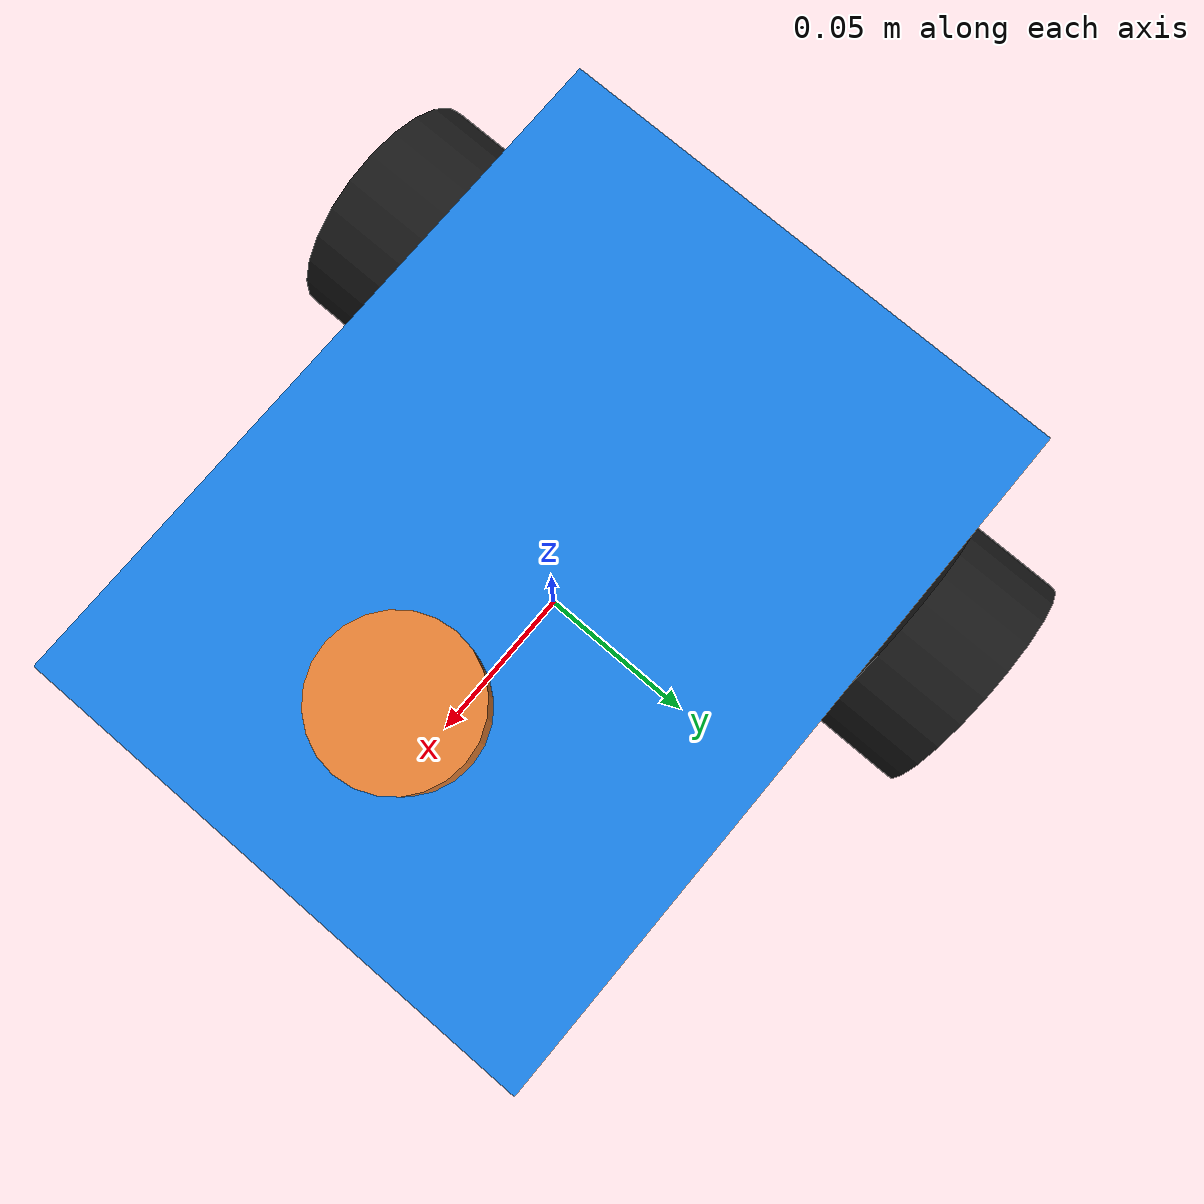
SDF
<?xml version="1.0"?>
<sdf version="1.9">
  <model name="floorscan_bot">
    <pose>0 0 0.05 0 0 0</pose>
    <self_collide>false</self_collide>

    <!-- ===================== CHASSIS ===================== -->
    <link name="chassis">
      <pose>0 0 0 0 0 0</pose>
      <inertial>
        <mass>1.2</mass>
        <inertia>
          <ixx>0.0060</ixx><iyy>0.0090</iyy><izz>0.0130</izz>
          <ixy>0</ixy><ixz>0</ixz><iyz>0</iyz>
        </inertia>
      </inertial>
      <collision name="chassis_collision">
        <geometry><box><size>0.20 0.15 0.08</size></box></geometry>
      </collision>
      <visual name="chassis_visual">
        <geometry><box><size>0.20 0.15 0.08</size></box></geometry>
        <material>
          <ambient>0.1 0.5 0.9 1</ambient>
          <diffuse>0.1 0.5 0.9 1</diffuse>
        </material>
      </visual>
    </link>

    <!-- ===================== CASTER ===================== -->
    <link name="caster">
      <pose>0.08 0 -0.03 0 0 0</pose>
      <inertial>
        <mass>0.05</mass>
        <inertia><ixx>0.00001</ixx><iyy>0.00001</iyy><izz>0.00001</izz>
          <ixy>0</ixy><ixz>0</ixz><iyz>0</iyz></inertia>
      </inertial>
      <collision name="caster_collision">
        <geometry><sphere><radius>0.015</radius></sphere></geometry>
        <surface><friction><ode><mu>0.01</mu><mu2>0.01</mu2></ode></friction></surface>
      </collision>
      <visual name="caster_visual">
        <geometry><sphere><radius>0.015</radius></sphere></geometry>
        <material><ambient>0.2 0.2 0.2 1</ambient></material>
      </visual>
    </link>
    <joint name="caster_joint" type="fixed">
      <parent>chassis</parent>
      <child>caster</child>
    </joint>

    <!-- ===================== LEFT WHEEL ===================== -->
    <link name="left_wheel">
      <pose>-0.05 0.09 0 -1.5708 0 0</pose>
      <inertial>
        <mass>0.05</mass>
        <inertia><ixx>0.00002</ixx><iyy>0.00002</iyy><izz>0.00003</izz>
          <ixy>0</ixy><ixz>0</ixz><iyz>0</iyz></inertia>
      </inertial>
      <collision name="left_wheel_collision">
        <geometry><cylinder><radius>0.033</radius><length>0.026</length></cylinder></geometry>
        <surface><friction><ode><mu>1.0</mu><mu2>1.0</mu2></ode></friction></surface>
      </collision>
      <visual name="left_wheel_visual">
        <geometry><cylinder><radius>0.033</radius><length>0.026</length></cylinder></geometry>
        <material><ambient>0.1 0.1 0.1 1</ambient></material>
      </visual>
    </link>
    <joint name="left_wheel_joint" type="revolute">
      <parent>chassis</parent>
      <child>left_wheel</child>
      <axis><xyz>0 0 1</xyz><limit><lower>-1e16</lower><upper>1e16</upper></limit></axis>
    </joint>

    <!-- ===================== RIGHT WHEEL ===================== -->
    <link name="right_wheel">
      <pose>-0.05 -0.09 0 -1.5708 0 0</pose>
      <inertial>
        <mass>0.05</mass>
        <inertia><ixx>0.00002</ixx><iyy>0.00002</iyy><izz>0.00003</izz>
          <ixy>0</ixy><ixz>0</ixz><iyz>0</iyz></inertia>
      </inertial>
      <collision name="right_wheel_collision">
        <geometry><cylinder><radius>0.033</radius><length>0.026</length></cylinder></geometry>
        <surface><friction><ode><mu>1.0</mu><mu2>1.0</mu2></ode></friction></surface>
      </collision>
      <visual name="right_wheel_visual">
        <geometry><cylinder><radius>0.033</radius><length>0.026</length></cylinder></geometry>
        <material><ambient>0.1 0.1 0.1 1</ambient></material>
      </visual>
    </link>
    <joint name="right_wheel_joint" type="revolute">
      <parent>chassis</parent>
      <child>right_wheel</child>
      <axis><xyz>0 0 1</xyz><limit><lower>-1e16</lower><upper>1e16</upper></limit></axis>
    </joint>

    <link name="scan_link">
      <pose>0.05 0 0.06 0 0 0</pose>
      <inertial><mass>0.02</mass>
        <inertia><ixx>1e-6</ixx><iyy>1e-6</iyy><izz>1e-6</izz></inertia></inertial>
      <visual name="scan_visual">
        <geometry><cylinder><radius>0.02</radius><length>0.02</length></cylinder></geometry>
        <material><ambient>0.9 0.5 0.2 1</ambient></material>
      </visual>
      <sensor name="floor_scan" type="gpu_lidar">
        <topic>scan</topic>
        <update_rate>5</update_rate>
        <lidar>
          <scan>
            <horizontal>
              <samples>360</samples>
              <resolution>1</resolution>
              <min_angle>-3.14159</min_angle>
              <max_angle>3.14159</max_angle>
            </horizontal>
          </scan>
          <range>
            <min>0.05</min>
            <max>8.0</max>
            <resolution>0.01</resolution>
          </range>
        </lidar>
        <always_on>true</always_on>
        <visualize>true</visualize>
      </sensor>
    </link>
    <joint name="scan_joint" type="fixed">
      <parent>chassis</parent>
      <child>scan_link</child>
    </joint>

    <!-- ===================== DIFFERENTIAL DRIVE ===================== -->
    <plugin filename="gz-sim-diff-drive-system" name="gz::sim::systems::DiffDrive">
      <left_joint>left_wheel_joint</left_joint>
      <right_joint>right_wheel_joint</right_joint>
      <wheel_separation>0.18</wheel_separation>
      <wheel_radius>0.033</wheel_radius>
      <max_linear_acceleration>1.5</max_linear_acceleration>
      <topic>cmd_vel</topic>
      <odom_topic>odom</odom_topic>
      <tf_topic>tf</tf_topic>
      <frame_id>odom</frame_id>
      <child_frame_id>base_footprint</child_frame_id>
      <odom_publish_frequency>30</odom_publish_frequency>
    </plugin>

    <plugin filename="gz-sim-joint-state-publisher-system" name="gz::sim::systems::JointStatePublisher">
      <topic>joint_states</topic>
    </plugin>
  </model>
</sdf>
